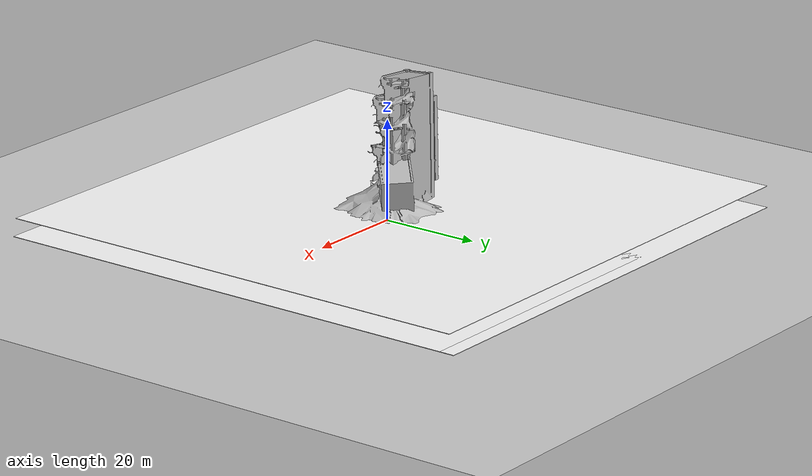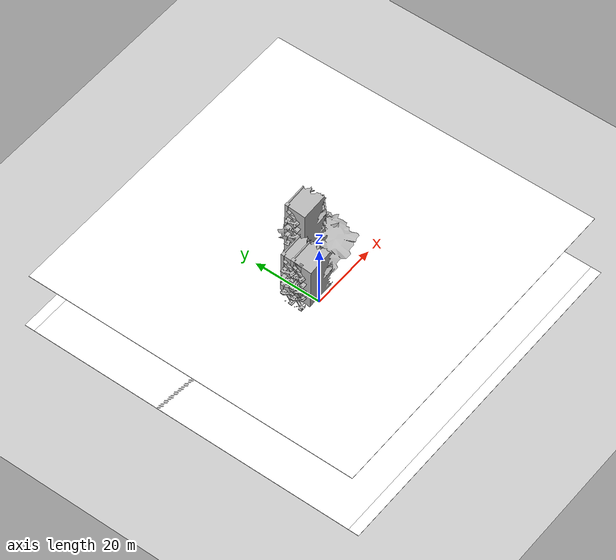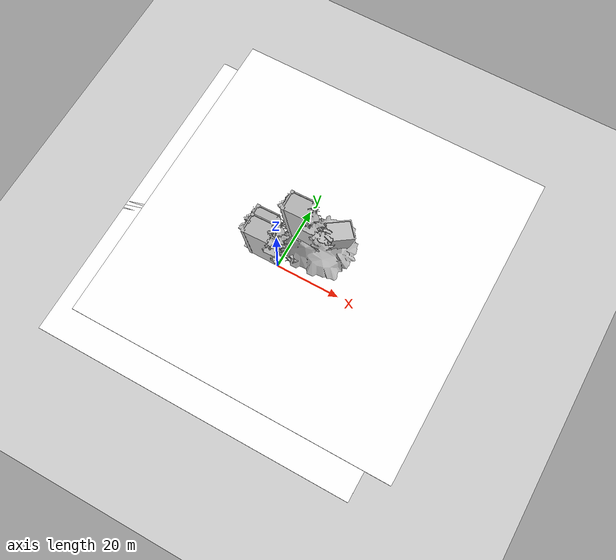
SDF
<?xml version="1.0" ?>
<sdf version="1.7">
    <world name="collapsed_industrial">
        <gravity>0 0 -9.8</gravity>

        <!-- Atmosphere Definition -->
        <atmosphere type="adiabatic">
            <temperature>288.15</temperature> <!-- Standard temperature in Kelvin -->
            <pressure>101325</pressure>       <!-- Standard atmospheric pressure in Pa -->
        </atmosphere>

        <physics name="1ms" type="ignored">
            <max_step_size>0.001</max_step_size>
            <real_time_factor>1.0</real_time_factor>
        </physics>
        <plugin
            filename="gz-sim-physics-system"
            name="gz::sim::systems::Physics">
        </plugin>
        <plugin
            filename="gz-sim-user-commands-system"
            name="gz::sim::systems::UserCommands">
        </plugin>
        <plugin
            filename="gz-sim-scene-broadcaster-system"
            name="gz::sim::systems::SceneBroadcaster">
        </plugin>
        <plugin filename="gz-sim-imu-system"
                name="gz::sim::systems::Imu">
        </plugin>
        <plugin filename="gz-sim-sensors-system"
                name="gz::sim::systems::Sensors">
            <render_engine>ogre2</render_engine>
        </plugin>
        <plugin filename="gz-sim-contact-system"
                name="gz::sim::systems::Contact">
        </plugin>
        <gui fullscreen="0">
          <!-- 3D scene -->
          <plugin filename="MinimalScene" name="3D View">
          <gz-gui>
            <title>3D View</title>
            <property type="bool" key="showTitleBar">false</property>
            <property type="string" key="state">docked</property>
          </gz-gui>

          <engine>ogre2</engine>
          <scene>scene</scene>
          <ambient_light>0.4 0.4 0.4</ambient_light>
          <background_color>0.8 0.8 0.8</background_color>
          <camera_pose>-6 0 6 0 0.5 0</camera_pose>
          <camera_clip>
            <near>0.25</near>
            <far>25000</far>
          </camera_clip>
          </plugin>

          <!-- Plugins that add functionality to the scene -->
          <plugin filename="EntityContextMenuPlugin" name="Entity context menu">
          <gz-gui>
            <property key="state" type="string">floating</property>
            <property key="width" type="double">5</property>
            <property key="height" type="double">5</property>
            <property key="showTitleBar" type="bool">false</property>
          </gz-gui>
          </plugin>
          <plugin filename="GzSceneManager" name="Scene Manager">
          <gz-gui>
            <property key="resizable" type="bool">false</property>
            <property key="width" type="double">5</property>
            <property key="height" type="double">5</property>
            <property key="state" type="string">floating</property>
            <property key="showTitleBar" type="bool">false</property>
          </gz-gui>
          </plugin>
          <plugin filename="InteractiveViewControl" name="Interactive view control">
          <gz-gui>
            <property key="resizable" type="bool">false</property>
            <property key="width" type="double">5</property>
            <property key="height" type="double">5</property>
            <property key="state" type="string">floating</property>
            <property key="showTitleBar" type="bool">false</property>
          </gz-gui>
          </plugin>
          <plugin filename="CameraTracking" name="Camera Tracking">
          <gz-gui>
            <property key="resizable" type="bool">false</property>
            <property key="width" type="double">5</property>
            <property key="height" type="double">5</property>
            <property key="state" type="string">floating</property>
            <property key="showTitleBar" type="bool">false</property>
          </gz-gui>
          </plugin>
          <plugin filename="MarkerManager" name="Marker manager">
          <gz-gui>
            <property key="resizable" type="bool">false</property>
            <property key="width" type="double">5</property>
            <property key="height" type="double">5</property>
            <property key="state" type="string">floating</property>
            <property key="showTitleBar" type="bool">false</property>
          </gz-gui>
          </plugin>
          <plugin filename="SelectEntities" name="Select Entities">
          <gz-gui>
            <anchors target="Select entities">
              <line own="right" target="right"/>
              <line own="top" target="top"/>
            </anchors>
            <property key="resizable" type="bool">false</property>
            <property key="width" type="double">5</property>
            <property key="height" type="double">5</property>
            <property key="state" type="string">floating</property>
            <property key="showTitleBar" type="bool">false</property>
          </gz-gui>
          </plugin>
          <plugin filename="VisualizationCapabilities" name="Visualization Capabilities">
          <gz-gui>
            <property key="resizable" type="bool">false</property>
            <property key="width" type="double">5</property>
            <property key="height" type="double">5</property>
            <property key="state" type="string">floating</property>
            <property key="showTitleBar" type="bool">false</property>
          </gz-gui>
          </plugin>

          <plugin filename="Spawn" name="Spawn Entities">
          <gz-gui>
            <anchors target="Select entities">
              <line own="right" target="right"/>
              <line own="top" target="top"/>
            </anchors>
            <property key="resizable" type="bool">false</property>
            <property key="width" type="double">5</property>
            <property key="height" type="double">5</property>
            <property key="state" type="string">floating</property>
            <property key="showTitleBar" type="bool">false</property>
          </gz-gui>
          </plugin>

          <!-- World control -->
          <plugin filename="WorldControl" name="World control">
          <gz-gui>
            <title>World control</title>
            <property type="bool" key="showTitleBar">false</property>
            <property type="bool" key="resizable">false</property>
            <property type="double" key="height">72</property>
            <property type="double" key="width">121</property>
            <property type="double" key="z">1</property>

            <property type="string" key="state">floating</property>
            <anchors target="3D View">
              <line own="left" target="left"/>
              <line own="bottom" target="bottom"/>
            </anchors>
          </gz-gui>

          <play_pause>true</play_pause>
          <step>true</step>
          <start_paused>true</start_paused>
          <use_event>true</use_event>

          </plugin>

          <!-- World statistics -->
          <plugin filename="WorldStats" name="World stats">
          <gz-gui>
            <title>World stats</title>
            <property type="bool" key="showTitleBar">false</property>
            <property type="bool" key="resizable">false</property>
            <property type="double" key="height">110</property>
            <property type="double" key="width">290</property>
            <property type="double" key="z">1</property>

            <property type="string" key="state">floating</property>
            <anchors target="3D View">
              <line own="right" target="right"/>
              <line own="bottom" target="bottom"/>
            </anchors>
          </gz-gui>

          <sim_time>true</sim_time>
          <real_time>true</real_time>
          <real_time_factor>true</real_time_factor>
          <iterations>true</iterations>
          </plugin>

          <!-- Insert simple shapes -->
          <plugin filename="Shapes" name="Shapes">
          <gz-gui>
            <property key="resizable" type="bool">false</property>
            <property key="x" type="double">0</property>
            <property key="y" type="double">0</property>
            <property key="width" type="double">250</property>
            <property key="height" type="double">50</property>
            <property key="state" type="string">floating</property>
            <property key="showTitleBar" type="bool">false</property>
            <property key="cardBackground" type="string">#666666</property>
          </gz-gui>
          </plugin>

          <!-- Insert lights -->
          <plugin filename="Lights" name="Lights">
          <gz-gui>
            <property key="resizable" type="bool">false</property>
            <property key="x" type="double">250</property>
            <property key="y" type="double">0</property>
            <property key="width" type="double">150</property>
            <property key="height" type="double">50</property>
            <property key="state" type="string">floating</property>
            <property key="showTitleBar" type="bool">false</property>
            <property key="cardBackground" type="string">#666666</property>
          </gz-gui>
          </plugin>

          <!-- Translate / rotate -->
          <plugin filename="TransformControl" name="Transform control">
          <gz-gui>
            <property key="resizable" type="bool">false</property>
            <property key="x" type="double">0</property>
            <property key="y" type="double">50</property>
            <property key="width" type="double">250</property>
            <property key="height" type="double">50</property>
            <property key="state" type="string">floating</property>
            <property key="showTitleBar" type="bool">false</property>
            <property key="cardBackground" type="string">#777777</property>
          </gz-gui>
          </plugin>

          <!-- Screenshot -->
          <plugin filename="Screenshot" name="Screenshot">
          <gz-gui>
            <property key="resizable" type="bool">false</property>
            <property key="x" type="double">250</property>
            <property key="y" type="double">50</property>
            <property key="width" type="double">50</property>
            <property key="height" type="double">50</property>
            <property key="state" type="string">floating</property>
            <property key="showTitleBar" type="bool">false</property>
            <property key="cardBackground" type="string">#777777</property>
          </gz-gui>
          </plugin>

          <!-- Video recorder -->
          <plugin filename="VideoRecorder" name="VideoRecorder">
          <gz-gui>
            <property key="resizable" type="bool">false</property>
            <property key="x" type="double">300</property>
            <property key="y" type="double">50</property>
            <property key="width" type="double">50</property>
            <property key="height" type="double">50</property>
            <property key="state" type="string">floating</property>
            <property key="showTitleBar" type="bool">false</property>
            <property key="cardBackground" type="string">#777777</property>
          </gz-gui>

          <record_video>
            <use_sim_time>true</use_sim_time>
            <lockstep>false</lockstep>
            <bitrate>4000000</bitrate>
          </record_video>
          </plugin>

          <!-- Inspector -->
          <plugin filename="ComponentInspector" name="Component inspector">
          <gz-gui>
            <property type="string" key="state">docked_collapsed</property>
          </gz-gui>
          </plugin>

          <!-- Entity tree -->
          <plugin filename="EntityTree" name="Entity tree">
          <gz-gui>
            <property type="string" key="state">docked_collapsed</property>
          </gz-gui>
          </plugin>

          <!-- View angle -->
          <plugin filename="ViewAngle" name="View angle">
          <gz-gui>
            <property type="string" key="state">docked_collapsed</property>
          </gz-gui>
          </plugin>

            <!-- KeyPublisher plugin-->
            <plugin filename="KeyPublisher" name="Key Publisher"/>

        </gui>

        <light type="directional" name="sun">
            <cast_shadows>true</cast_shadows>
            <pose>0 0 10 0 0 0</pose>
            <diffuse>0.8 0.8 0.8 1</diffuse>
            <specular>0.2 0.2 0.2 1</specular>
            <attenuation>
                <range>1000</range>
                <constant>0.9</constant>
                <linear>0.01</linear>
                <quadratic>0.001</quadratic>
            </attenuation>
            <direction>-0.5 0.1 -0.9</direction>
        </light>

        <model name="ground_plane">
            <static>true</static>
            <link name="link">
                <collision name="collision">
                <geometry>
                    <plane>
                    <normal>0 0 1</normal>
                    </plane>
                </geometry>
                </collision>
                <visual name="visual">
                <geometry>
                    <plane>
                    <normal>0 0 1</normal>
                    <size>100 100</size>
                    </plane>
                </geometry>
                <material>
                    <ambient>0.8 0.8 0.8 1</ambient>
                    <diffuse>0.8 0.8 0.8 1</diffuse>
                    <specular>0.8 0.8 0.8 1</specular>
                </material>
                </visual>
            </link>
        </model>

        <model name="collapsed_industrial">
            <pose>0 3 0 0 0 0</pose> <!-- Adjust position as needed -->
            <scale>10 10 10</scale>
            <include>
                <uri>file:///home/redpaladin/Projects/helios_ws/src/helios/worlds/collapsed_industrial/model.sdf</uri>
            </include>
        </model>

        <model name="Survivor_Male">
            <pose>8 8 7.5 0 0 0</pose>
            <include>
                <uri>file:///home/redpaladin/Projects/helios_ws/src/helios/models/Survivor_Male/model.sdf</uri>
            </include>
        </model>

            <include>
                <uri>file:////home/redpaladin/Projects/helios_ws/src/helios/models/HELIOS/model.sdf</uri>
            </include>

    </world>
</sdf>

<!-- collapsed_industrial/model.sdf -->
<sdf version="1.7">
  <model name="collapsed_industrial">
    <static>true</static>
    <link name="link">
      <collision name="collision">
        <geometry>
          <mesh>
            <uri>file:///home/redpaladin/Projects/helios_ws/src/helios/worlds/collapsed_industrial/meshes/collapsed_industrial.dae</uri>
          </mesh>
        </geometry>
      </collision>
      <visual name="visual">
        <geometry>
          <mesh>
            <uri>file:///home/redpaladin/Projects/helios_ws/src/helios/worlds/collapsed_industrial/meshes/collapsed_industrial.dae</uri>
          </mesh>
        </geometry>
      </visual>
    </link>

    <link name="custom_ground_plane">
      <pose>0 0 0 0 0 0</pose>  <!-- Adjust if necessary -->
      <visual name="custom_ground_plane_visual">
        <geometry>
          <plane>
            <normal>0 0 1</normal>
            <size>100 100</size>  <!-- Adjust size as needed -->
          </plane>
        </geometry>
        <material>
          <ambient>1 1 1 1</ambient>  <!-- White -->
          <diffuse>1 1 1 1</diffuse>  <!-- White -->
          <specular>0.1 0.1 0.1 1</specular>
        </material>
      </visual>
      <collision name="custom_ground_plane_collision">
        <geometry>
          <plane>
            <normal>0 0 1</normal>
            <size>100 100</size>
          </plane>
        </geometry>
        <surface>
          <friction>
            <ode>
              <mu>1.0</mu>
              <mu2>1.0</mu2>
            </ode>
          </friction>
          <bounce>
            <restitution_coefficient>0</restitution_coefficient>
            <threshold>1e6</threshold>
          </bounce>
        </surface>
      </collision>
    </link>

  </model>
</sdf>
